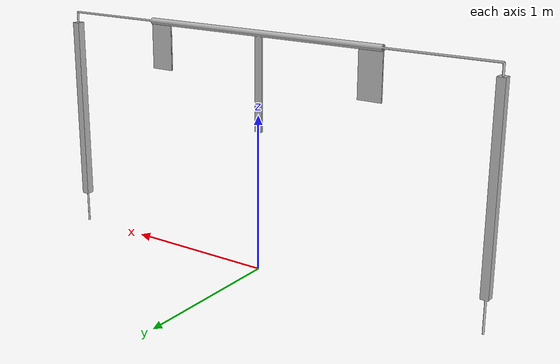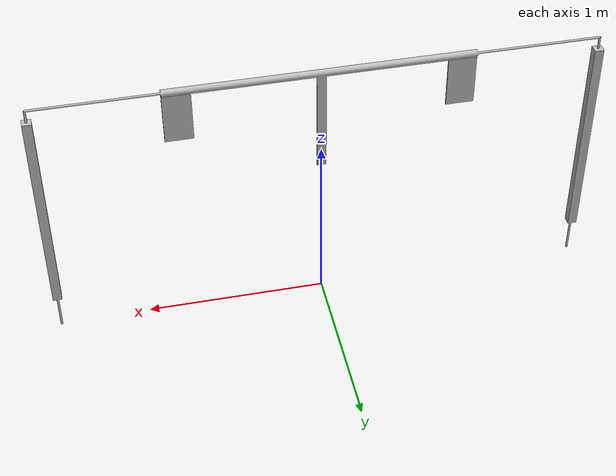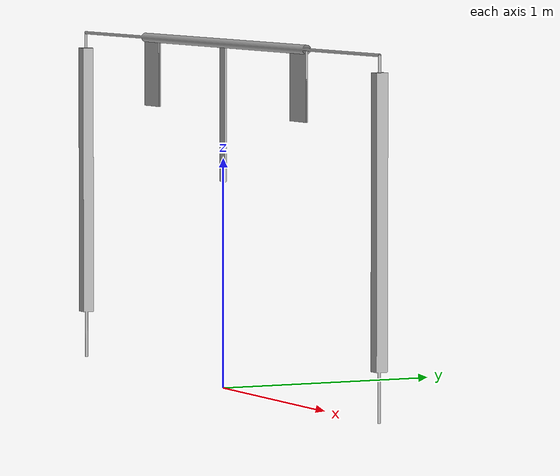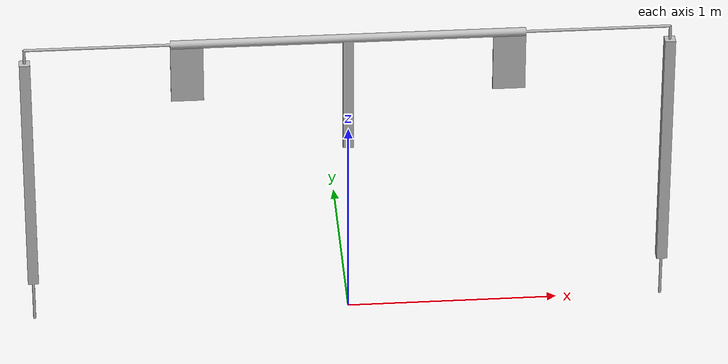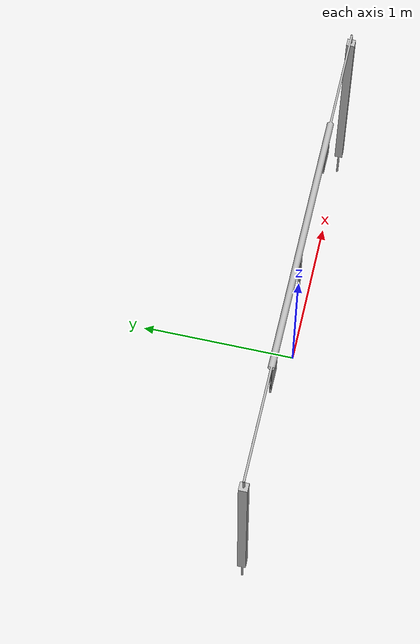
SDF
<?xml version="1.0"?>
<sdf version="1.11">  <model name="robosub23_gate">
    <static>1</static>

    <link name="gate">
      <pose>0 0 0 0 0 0</pose>
      <visual name="gate_vis">
        <pose>0 0 0 1.57079632679 0 0</pose>
        <geometry>
          <mesh>
            <uri>model://robosub23_gate/gate.obj</uri>
          </mesh>
        </geometry>
      </visual>
      <collision name="gate_collision">
        <pose>0 0 0 0 0 0</pose>
        <geometry>
          <mesh>
            <uri>model://robosub23_gate/gate.stl</uri>
          </mesh>
        </geometry>
      </collision>
    </link>
    <link name="box_abydos0">
      <pose>-0.75 0 1.3476 0 0 0</pose>
      <visual name="box_abydos0_vis">
        <geometry>
          <box>
            <size>0.1524 0.01 0.3048 </size>
          </box>
        </geometry>
        <material>
          <script>
            <uri>file://materials/scripts/robosub23_symbols.material</uri>
            <name>TexturedShape/abydos0</name>
          </script>
        </material>
      </visual>
    </link>

    <link name="box_earth0">
      <pose>0.75 0 1.3476 0 0 0</pose>
      <visual name="box_earth0_vis">
        <geometry>
          <box>
            <size>0.1524 0.01 0.3048 </size>
          </box>
        </geometry>
        <material>
          <script>
            <uri>file://materials/scripts/robosub23_symbols.material</uri>
            <name>TexturedShape/earth0</name>
          </script>
        </material>
      </visual>
    </link>
  </model>
</sdf>
